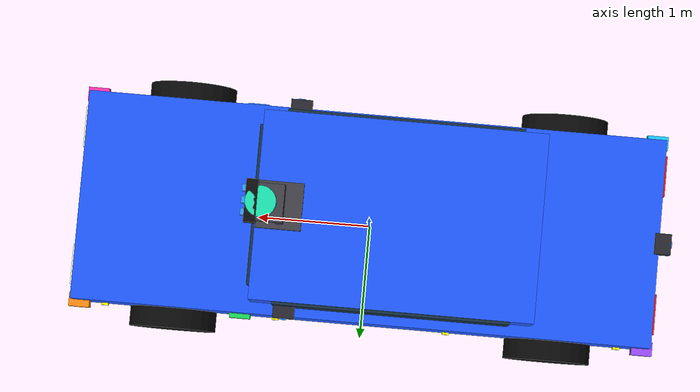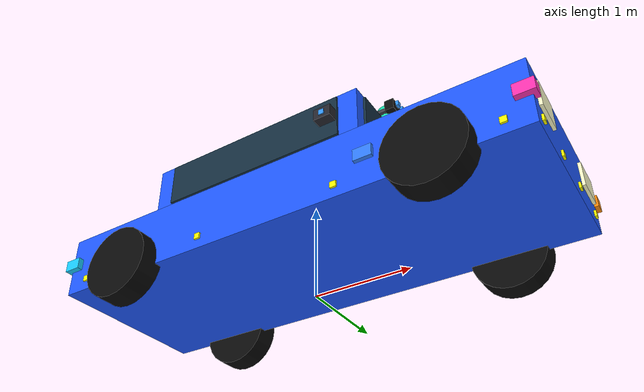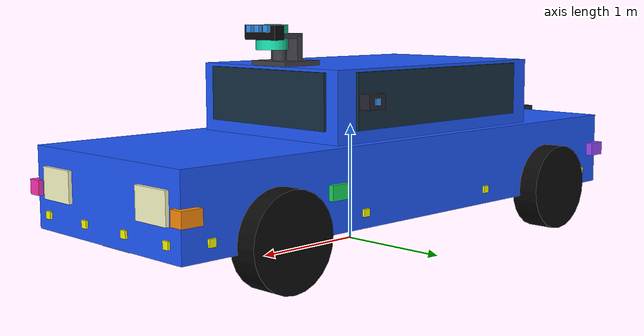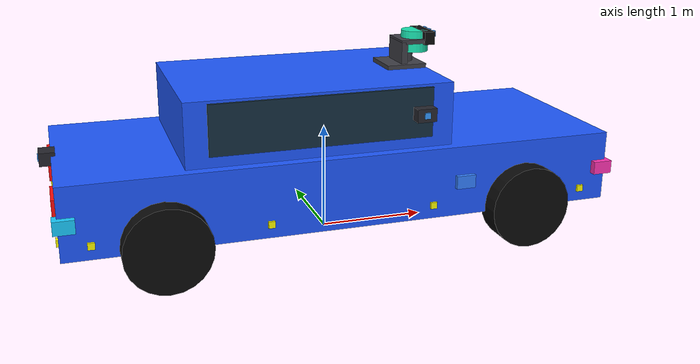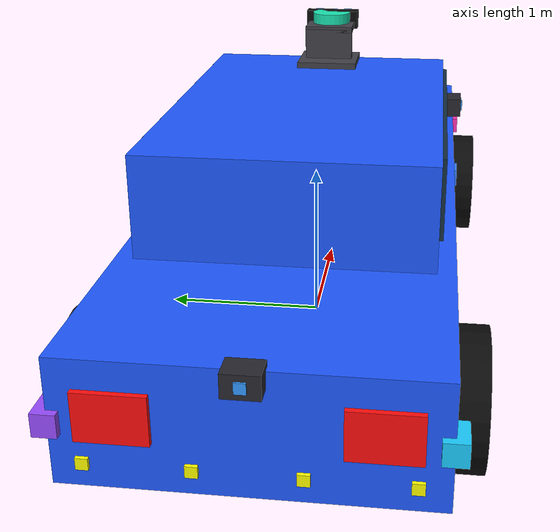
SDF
<?xml version='1.0' encoding='utf-8'?>
<sdf version="1.9">
  <model name="car_b">
    <static>true</static>
    <include merge="true"><uri>model://perception_rig</uri></include>
    <include merge="true"><uri>model://corner_radar_rig</uri></include>
    <include merge="true"><uri>model://side_radar_rig</uri></include>
    <include merge="true"><uri>model://surround_camera_rig</uri></include>
    <include merge="true"><uri>model://ultrasonic_rig</uri></include>
    <link name="body">
      <visual name="chassis">
        <pose>0 0 0.65 0 0 0</pose>
        <geometry>
          <box>
            <size>5 1.8 0.65</size>
          </box>
        </geometry>
        <material>
          <ambient>0.12 0.35 1 1</ambient>
          <diffuse>0.12 0.35 1 1</diffuse>
        </material>
      </visual>
      <visual name="cabin">
        <pose>-0.25 0 1.2 0 0 0</pose>
        <geometry>
          <box>
            <size>2.4 1.6 0.7</size>
          </box>
        </geometry>
        <material>
          <ambient>0.12 0.35 1 1</ambient>
          <diffuse>0.12 0.35 1 1</diffuse>
        </material>
      </visual>
      <visual name="windshield">
        <pose>0.96 0 1.3 0 0 0</pose>
        <geometry>
          <box>
            <size>0.03 1.35 0.45</size>
          </box>
        </geometry>
        <material>
          <ambient>0.08 0.18 0.25 1</ambient>
          <diffuse>0.08 0.18 0.25 1</diffuse>
        </material>
      </visual>
      <visual name="window-1">
        <pose>-0.25 -0.81 1.3 0 0 0</pose>
        <geometry>
          <box>
            <size>2 0.03 0.45</size>
          </box>
        </geometry>
        <material>
          <ambient>0.08 0.18 0.25 1</ambient>
          <diffuse>0.08 0.18 0.25 1</diffuse>
        </material>
      </visual>
      <visual name="wheel-1.65_-1">
        <pose>-1.65 -0.95 0.38 1.570796 0 0</pose>
        <geometry>
          <cylinder>
            <radius>0.38</radius>
            <length>0.25</length>
          </cylinder>
        </geometry>
        <material>
          <ambient>0.04 0.04 0.04 1</ambient>
          <diffuse>0.04 0.04 0.04 1</diffuse>
        </material>
      </visual>
      <visual name="wheel1.65_-1">
        <pose>1.65 -0.95 0.38 1.570796 0 0</pose>
        <geometry>
          <cylinder>
            <radius>0.38</radius>
            <length>0.25</length>
          </cylinder>
        </geometry>
        <material>
          <ambient>0.04 0.04 0.04 1</ambient>
          <diffuse>0.04 0.04 0.04 1</diffuse>
        </material>
      </visual>
      <visual name="headlight-1">
        <pose>2.51 -0.6 0.7 0 0 0</pose>
        <geometry>
          <box>
            <size>0.04 0.35 0.25</size>
          </box>
        </geometry>
        <material>
          <ambient>1 1 0.8 1</ambient>
          <diffuse>1 1 0.8 1</diffuse>
        </material>
      </visual>
      <visual name="taillight-1">
        <pose>-2.51 -0.6 0.7 0 0 0</pose>
        <geometry>
          <box>
            <size>0.04 0.35 0.25</size>
          </box>
        </geometry>
        <material>
          <ambient>1 0.05 0.05 1</ambient>
          <diffuse>1 0.05 0.05 1</diffuse>
        </material>
      </visual>
      <visual name="window1">
        <pose>-0.25 0.81 1.3 0 0 0</pose>
        <geometry>
          <box>
            <size>2 0.03 0.45</size>
          </box>
        </geometry>
        <material>
          <ambient>0.08 0.18 0.25 1</ambient>
          <diffuse>0.08 0.18 0.25 1</diffuse>
        </material>
      </visual>
      <visual name="wheel-1.65_1">
        <pose>-1.65 0.95 0.38 1.570796 0 0</pose>
        <geometry>
          <cylinder>
            <radius>0.38</radius>
            <length>0.25</length>
          </cylinder>
        </geometry>
        <material>
          <ambient>0.04 0.04 0.04 1</ambient>
          <diffuse>0.04 0.04 0.04 1</diffuse>
        </material>
      </visual>
      <visual name="wheel1.65_1">
        <pose>1.65 0.95 0.38 1.570796 0 0</pose>
        <geometry>
          <cylinder>
            <radius>0.38</radius>
            <length>0.25</length>
          </cylinder>
        </geometry>
        <material>
          <ambient>0.04 0.04 0.04 1</ambient>
          <diffuse>0.04 0.04 0.04 1</diffuse>
        </material>
      </visual>
      <visual name="headlight1">
        <pose>2.51 0.6 0.7 0 0 0</pose>
        <geometry>
          <box>
            <size>0.04 0.35 0.25</size>
          </box>
        </geometry>
        <material>
          <ambient>1 1 0.8 1</ambient>
          <diffuse>1 1 0.8 1</diffuse>
        </material>
      </visual>
      <visual name="taillight1">
        <pose>-2.51 0.6 0.7 0 0 0</pose>
        <geometry>
          <box>
            <size>0.04 0.35 0.25</size>
          </box>
        </geometry>
        <material>
          <ambient>1 0.05 0.05 1</ambient>
          <diffuse>1 0.05 0.05 1</diffuse>
        </material>
      </visual>
    </link>
  </model>
</sdf>

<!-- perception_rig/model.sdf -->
<sdf version="1.9">
  <!-- 以车辆中心为原点，x 前、y 左、z 上；话题使用 Gazebo 自动模型作用域。 -->
  <model name="perception_rig">
    <static>true</static>
    <link name="sensor_mount">
      <!-- 车顶 z=1.55；底板、支柱与机身相接，不悬空。 -->
      <visual name="mounting_plate">
        <pose>0.75 0 1.57 0 0 0</pose>
        <geometry><box><size>0.38 0.40 0.04</size></box></geometry>
        <material><ambient>0.25 0.25 0.28 1</ambient><diffuse>0.25 0.25 0.28 1</diffuse></material>
      </visual>
      <visual name="lidar_pedestal">
        <pose>0.82 0 1.64 0 0 0</pose>
        <geometry><cylinder><radius>0.06</radius><length>0.18</length></cylinder></geometry>
        <material><ambient>0.25 0.25 0.28 1</ambient><diffuse>0.25 0.25 0.28 1</diffuse></material>
      </visual>
      <visual name="lidar_housing">
        <pose>0.90 0 1.78 0 0 0</pose>
        <geometry><cylinder><radius>0.13</radius><length>0.2</length></cylinder></geometry>
        <material><ambient>0.1 0.9 0.7 1</ambient><diffuse>0.1 0.9 0.7 1</diffuse></material>
      </visual>
      <visual name="camera_pedestal">
        <pose>0.74 0 1.67 0 0 0</pose>
        <geometry><box><size>0.06 0.32 0.24</size></box></geometry>
        <material><ambient>0.25 0.25 0.28 1</ambient><diffuse>0.25 0.25 0.28 1</diffuse></material>
      </visual>
      <visual name="camera_arm">
        <pose>0.86 0 1.79 0 0 0</pose>
        <geometry><box><size>0.30 0.32 0.04</size></box></geometry>
        <material><ambient>0.25 0.25 0.28 1</ambient><diffuse>0.25 0.25 0.28 1</diffuse></material>
      </visual>
      <visual name="camera_housing">
        <pose>0.98 0 1.82 0 0 0</pose>
        <geometry><box><size>0.1 0.36 0.12</size></box></geometry>
        <material><ambient>0.05 0.05 0.05 1</ambient><diffuse>0.05 0.05 0.05 1</diffuse></material>
      </visual>
      <visual name="wide_lens">
        <pose>1.04 0.10 1.85 0 0 0</pose>
        <geometry><box><size>0.04 0.055 0.055</size></box></geometry>
        <material><ambient>0.2 0.6 1 1</ambient><diffuse>0.2 0.6 1 1</diffuse></material>
      </visual>
      <visual name="standard_lens">
        <pose>1.04 0 1.85 0 0 0</pose>
        <geometry><box><size>0.04 0.055 0.055</size></box></geometry>
        <material><ambient>0.2 0.6 1 1</ambient><diffuse>0.2 0.6 1 1</diffuse></material>
      </visual>
      <visual name="tele_lens">
        <pose>1.04 -0.10 1.85 0 0 0</pose>
        <geometry><box><size>0.04 0.055 0.055</size></box></geometry>
        <material><ambient>0.2 0.6 1 1</ambient><diffuse>0.2 0.6 1 1</diffuse></material>
      </visual>
      <sensor name="lidar" type="gpu_lidar">
        <pose>0.90 0 1.85 0 0 0</pose>
        <always_on>true</always_on><update_rate>10</update_rate>
        <lidar>
          <scan>
            <horizontal><samples>720</samples><resolution>1</resolution><min_angle>-1.0471975512</min_angle><max_angle>1.0471975512</max_angle></horizontal>
            <vertical><samples>64</samples><resolution>1</resolution><min_angle>-0.4363323130</min_angle><max_angle>0.2617993878</max_angle></vertical>
          </scan>
          <range><min>0.3</min><max>100</max><resolution>0.01</resolution></range>
        </lidar>
      </sensor>
      <!-- 车顶前缘 x=0.95、顶面 z=1.55；镜头略向前伸且高于顶面。 -->
      <sensor name="wide" type="camera">
        <pose>1.05 0.10 1.85 0 0.1745329252 0</pose>
        <always_on>true</always_on><update_rate>15</update_rate>
        <camera><horizontal_fov>2.3561944902</horizontal_fov><image><width>640</width><height>360</height><format>R8G8B8</format></image><clip><near>0.05</near><far>150</far></clip></camera>
      </sensor>
      <sensor name="standard" type="camera">
        <pose>1.05 0 1.85 0 0.0872664626 0</pose>
        <always_on>true</always_on><update_rate>15</update_rate>
        <camera><horizontal_fov>1.0471975512</horizontal_fov><image><width>640</width><height>360</height><format>R8G8B8</format></image><clip><near>0.05</near><far>150</far></clip></camera>
      </sensor>
      <sensor name="tele" type="camera">
        <pose>1.05 -0.10 1.85 0 0 0</pose>
        <always_on>true</always_on><update_rate>15</update_rate>
        <camera><horizontal_fov>0.3490658504</horizontal_fov><image><width>640</width><height>360</height><format>R8G8B8</format></image><clip><near>0.05</near><far>300</far></clip></camera>
      </sensor>
    </link>
  </model>
</sdf>

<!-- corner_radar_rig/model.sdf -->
<sdf version="1.9">
  <!-- x forward, y left, z up; sensor poses are relative to the car base. -->
  <model name="corner_radar_rig">
    <static>true</static>
    <link name="radar_front_left_mount">
      <visual name="front_left_housing">
        <pose>2.45 0.9 0.65 0 0 0</pose>
        <geometry><box><size>0.18 0.12 0.12</size></box></geometry>
        <material><ambient>1 0.55 0.05 1</ambient><diffuse>1 0.55 0.05 1</diffuse></material>
      </visual>
      <!-- Range-ray approximation of a corner radar, not an RF model. -->
      <sensor name="front_left" type="gpu_lidar">
        <pose>2.55 0.97 0.65 0 0 0.7853981634</pose>
        <always_on>true</always_on><update_rate>20</update_rate>
        <lidar>
          <scan>
            <horizontal><samples>240</samples><resolution>1</resolution><min_angle>-1.0471975512</min_angle><max_angle>1.0471975512</max_angle></horizontal>
            <vertical><samples>16</samples><resolution>1</resolution><min_angle>-0.2617993878</min_angle><max_angle>0.2617993878</max_angle></vertical>
          </scan>
          <range><min>0.3</min><max>30</max><resolution>0.05</resolution></range>
        </lidar>
      </sensor>
    </link>
    <link name="radar_front_right_mount">
      <visual name="front_right_housing">
        <pose>2.45 -0.9 0.65 0 0 0</pose>
        <geometry><box><size>0.18 0.12 0.12</size></box></geometry>
        <material><ambient>1 0.2 0.7 1</ambient><diffuse>1 0.2 0.7 1</diffuse></material>
      </visual>
      <!-- Range-ray approximation of a corner radar, not an RF model. -->
      <sensor name="front_right" type="gpu_lidar">
        <pose>2.55 -0.97 0.65 0 0 -0.7853981634</pose>
        <always_on>true</always_on><update_rate>20</update_rate>
        <lidar>
          <scan>
            <horizontal><samples>240</samples><resolution>1</resolution><min_angle>-1.0471975512</min_angle><max_angle>1.0471975512</max_angle></horizontal>
            <vertical><samples>16</samples><resolution>1</resolution><min_angle>-0.2617993878</min_angle><max_angle>0.2617993878</max_angle></vertical>
          </scan>
          <range><min>0.3</min><max>30</max><resolution>0.05</resolution></range>
        </lidar>
      </sensor>
    </link>
    <link name="radar_rear_left_mount">
      <visual name="rear_left_housing">
        <pose>-2.45 0.9 0.65 0 0 0</pose>
        <geometry><box><size>0.18 0.12 0.12</size></box></geometry>
        <material><ambient>0.6 0.3 1 1</ambient><diffuse>0.6 0.3 1 1</diffuse></material>
      </visual>
      <!-- Range-ray approximation of a corner radar, not an RF model. -->
      <sensor name="rear_left" type="gpu_lidar">
        <pose>-2.55 0.97 0.65 0 0 2.3561944902</pose>
        <always_on>true</always_on><update_rate>20</update_rate>
        <lidar>
          <scan>
            <horizontal><samples>240</samples><resolution>1</resolution><min_angle>-1.0471975512</min_angle><max_angle>1.0471975512</max_angle></horizontal>
            <vertical><samples>16</samples><resolution>1</resolution><min_angle>-0.2617993878</min_angle><max_angle>0.2617993878</max_angle></vertical>
          </scan>
          <range><min>0.3</min><max>30</max><resolution>0.05</resolution></range>
        </lidar>
      </sensor>
    </link>
    <link name="radar_rear_right_mount">
      <visual name="rear_right_housing">
        <pose>-2.45 -0.9 0.65 0 0 0</pose>
        <geometry><box><size>0.18 0.12 0.12</size></box></geometry>
        <material><ambient>0.1 0.8 1 1</ambient><diffuse>0.1 0.8 1 1</diffuse></material>
      </visual>
      <!-- Range-ray approximation of a corner radar, not an RF model. -->
      <sensor name="rear_right" type="gpu_lidar">
        <pose>-2.55 -0.97 0.65 0 0 -2.3561944902</pose>
        <always_on>true</always_on><update_rate>20</update_rate>
        <lidar>
          <scan>
            <horizontal><samples>240</samples><resolution>1</resolution><min_angle>-1.0471975512</min_angle><max_angle>1.0471975512</max_angle></horizontal>
            <vertical><samples>16</samples><resolution>1</resolution><min_angle>-0.2617993878</min_angle><max_angle>0.2617993878</max_angle></vertical>
          </scan>
          <range><min>0.3</min><max>30</max><resolution>0.05</resolution></range>
        </lidar>
      </sensor>
    </link>
  </model>
</sdf>

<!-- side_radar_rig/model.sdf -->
<sdf version="1.9">
  <model name="side_radar_rig">
    <static>true</static>
    <link name="radar_side_left_mount">
      <visual name="side_left_housing">
        <pose>1.05 0.88 0.65 0 0 0</pose>
        <geometry>
          <box>
            <size>0.18 0.12 0.12</size>
          </box>
        </geometry>
        <material>
          <ambient>0.1 0.85 0.35 1</ambient>
          <diffuse>0.1 0.85 0.35 1</diffuse>
        </material>
      </visual>
      <sensor name="side_left" type="gpu_lidar">
        <pose>1.05 0.97 0.65 0 0 1.9198621772</pose>
        <always_on>true</always_on>
        <update_rate>20</update_rate>
        <lidar>
          <scan>
            <horizontal>
              <samples>240</samples>
              <resolution>1</resolution>
              <min_angle>-1.0471975512</min_angle>
              <max_angle>1.0471975512</max_angle>
            </horizontal>
            <vertical>
              <samples>16</samples>
              <resolution>1</resolution>
              <min_angle>-0.2617993878</min_angle>
              <max_angle>0.2617993878</max_angle>
            </vertical>
          </scan>
          <range>
            <min>0.3</min>
            <max>30</max>
            <resolution>0.05</resolution>
          </range>
        </lidar>
      </sensor>
    </link>
    <link name="radar_side_right_mount">
      <visual name="side_right_housing">
        <pose>1.05 -0.88 0.65 0 0 0</pose>
        <geometry>
          <box>
            <size>0.18 0.12 0.12</size>
          </box>
        </geometry>
        <material>
          <ambient>0.2 0.5 1 1</ambient>
          <diffuse>0.2 0.5 1 1</diffuse>
        </material>
      </visual>
      <sensor name="side_right" type="gpu_lidar">
        <pose>1.05 -0.97 0.65 0 0 -1.9198621772</pose>
        <always_on>true</always_on>
        <update_rate>20</update_rate>
        <lidar>
          <scan>
            <horizontal>
              <samples>240</samples>
              <resolution>1</resolution>
              <min_angle>-1.0471975512</min_angle>
              <max_angle>1.0471975512</max_angle>
            </horizontal>
            <vertical>
              <samples>16</samples>
              <resolution>1</resolution>
              <min_angle>-0.2617993878</min_angle>
              <max_angle>0.2617993878</max_angle>
            </vertical>
          </scan>
          <range>
            <min>0.3</min>
            <max>30</max>
            <resolution>0.05</resolution>
          </range>
        </lidar>
      </sensor>
    </link>
  </model>
</sdf>

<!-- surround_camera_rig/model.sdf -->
<sdf version="1.9">
  <!-- Identity link pose; camera poses relative to vehicle: x forward, y left, z up. -->
  <model name="surround_camera_rig">
    <static>true</static>
    <link name="surround_camera_mount">
      <!-- Side housings touch the windows; optical origins lie outside the housings. -->
      <visual name="left_housing">
        <pose>0.65 0.87 1.30 0 0 0</pose>
        <geometry><box><size>0.18 0.12 0.12</size></box></geometry>
        <material><ambient>0.15 0.15 0.18 1</ambient><diffuse>0.15 0.15 0.18 1</diffuse></material>
      </visual>
      <visual name="left_lens">
        <pose>0.65 0.93 1.30 0 0 0</pose>
        <geometry><box><size>0.055 0.02 0.055</size></box></geometry>
        <material><ambient>0.2 0.6 1 1</ambient><diffuse>0.2 0.6 1 1</diffuse></material>
      </visual>
      <visual name="right_housing">
        <pose>0.65 -0.87 1.30 0 0 0</pose>
        <geometry><box><size>0.18 0.12 0.12</size></box></geometry>
        <material><ambient>0.15 0.15 0.18 1</ambient><diffuse>0.15 0.15 0.18 1</diffuse></material>
      </visual>
      <visual name="right_lens">
        <pose>0.65 -0.93 1.30 0 0 0</pose>
        <geometry><box><size>0.055 0.02 0.055</size></box></geometry>
        <material><ambient>0.2 0.6 1 1</ambient><diffuse>0.2 0.6 1 1</diffuse></material>
      </visual>
      <visual name="rear_housing">
        <pose>-2.53 0 0.95 0 0 0</pose>
        <geometry><box><size>0.14 0.18 0.12</size></box></geometry>
        <material><ambient>0.15 0.15 0.18 1</ambient><diffuse>0.15 0.15 0.18 1</diffuse></material>
      </visual>
      <visual name="rear_lens">
        <pose>-2.60 0 0.95 0 0 0</pose>
        <geometry><box><size>0.02 0.055 0.055</size></box></geometry>
        <material><ambient>0.2 0.6 1 1</ambient><diffuse>0.2 0.6 1 1</diffuse></material>
      </visual>
      <sensor name="left" type="camera">
        <pose>0.65 0.95 1.30 0 0.2617993878 2.0507618711</pose>
        <always_on>true</always_on><update_rate>15</update_rate>
        <camera><horizontal_fov>2.3561944902</horizontal_fov><image><width>640</width><height>360</height><format>R8G8B8</format></image><clip><near>0.05</near><far>150</far></clip></camera>
      </sensor>
      <sensor name="right" type="camera">
        <pose>0.65 -0.95 1.30 0 0.2617993878 -2.0507618711</pose>
        <always_on>true</always_on><update_rate>15</update_rate>
        <camera><horizontal_fov>2.3561944902</horizontal_fov><image><width>640</width><height>360</height><format>R8G8B8</format></image><clip><near>0.05</near><far>150</far></clip></camera>
      </sensor>
      <sensor name="rear" type="camera">
        <pose>-2.62 0 0.95 0 0 3.1415926536</pose>
        <always_on>true</always_on><update_rate>15</update_rate>
        <camera><horizontal_fov>1.7453292520</horizontal_fov><image><width>640</width><height>360</height><format>R8G8B8</format></image><clip><near>0.05</near><far>150</far></clip></camera>
      </sensor>
    </link>
  </model>
</sdf>

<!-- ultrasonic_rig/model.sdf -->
<sdf version="1.9">
  <model name="ultrasonic_rig">
    <static>true</static>
    <link name="ultrasonic_front_left_outer_mount">
      <visual name="front_left_outer_housing">
        <pose>2.5 0.75 0.45 0 0 0</pose>
        <geometry>
          <box>
            <size>0.04 0.06 0.06</size>
          </box>
        </geometry>
        <material>
          <ambient>1 1 0 1</ambient>
          <diffuse>1 1 0 1</diffuse>
        </material>
      </visual>
      <sensor name="front_left_outer" type="gpu_lidar">
        <pose>2.54 0.75 0.45 0 0 0.6981317008</pose>
        <always_on>true</always_on>
        <update_rate>10</update_rate>
        <lidar>
          <scan>
            <horizontal>
              <samples>80</samples>
              <resolution>1</resolution>
              <min_angle>-0.8726646260</min_angle>
              <max_angle>0.8726646260</max_angle>
            </horizontal>
            <vertical>
              <samples>16</samples>
              <resolution>1</resolution>
              <min_angle>-0.5235987756</min_angle>
              <max_angle>0.5235987756</max_angle>
            </vertical>
          </scan>
          <range>
            <min>0.15</min>
            <max>5</max>
            <resolution>0.01</resolution>
          </range>
        </lidar>
      </sensor>
    </link>
    <link name="ultrasonic_front_left_inner_mount">
      <visual name="front_left_inner_housing">
        <pose>2.5 0.25 0.45 0 0 0</pose>
        <geometry>
          <box>
            <size>0.04 0.06 0.06</size>
          </box>
        </geometry>
        <material>
          <ambient>1 1 0 1</ambient>
          <diffuse>1 1 0 1</diffuse>
        </material>
      </visual>
      <sensor name="front_left_inner" type="gpu_lidar">
        <pose>2.54 0.25 0.45 0 0 0.1745329252</pose>
        <always_on>true</always_on>
        <update_rate>10</update_rate>
        <lidar>
          <scan>
            <horizontal>
              <samples>80</samples>
              <resolution>1</resolution>
              <min_angle>-0.8726646260</min_angle>
              <max_angle>0.8726646260</max_angle>
            </horizontal>
            <vertical>
              <samples>16</samples>
              <resolution>1</resolution>
              <min_angle>-0.5235987756</min_angle>
              <max_angle>0.5235987756</max_angle>
            </vertical>
          </scan>
          <range>
            <min>0.15</min>
            <max>5</max>
            <resolution>0.01</resolution>
          </range>
        </lidar>
      </sensor>
    </link>
    <link name="ultrasonic_front_right_inner_mount">
      <visual name="front_right_inner_housing">
        <pose>2.5 -0.25 0.45 0 0 0</pose>
        <geometry>
          <box>
            <size>0.04 0.06 0.06</size>
          </box>
        </geometry>
        <material>
          <ambient>1 1 0 1</ambient>
          <diffuse>1 1 0 1</diffuse>
        </material>
      </visual>
      <sensor name="front_right_inner" type="gpu_lidar">
        <pose>2.54 -0.25 0.45 0 0 -0.1745329252</pose>
        <always_on>true</always_on>
        <update_rate>10</update_rate>
        <lidar>
          <scan>
            <horizontal>
              <samples>80</samples>
              <resolution>1</resolution>
              <min_angle>-0.8726646260</min_angle>
              <max_angle>0.8726646260</max_angle>
            </horizontal>
            <vertical>
              <samples>16</samples>
              <resolution>1</resolution>
              <min_angle>-0.5235987756</min_angle>
              <max_angle>0.5235987756</max_angle>
            </vertical>
          </scan>
          <range>
            <min>0.15</min>
            <max>5</max>
            <resolution>0.01</resolution>
          </range>
        </lidar>
      </sensor>
    </link>
    <link name="ultrasonic_front_right_outer_mount">
      <visual name="front_right_outer_housing">
        <pose>2.5 -0.75 0.45 0 0 0</pose>
        <geometry>
          <box>
            <size>0.04 0.06 0.06</size>
          </box>
        </geometry>
        <material>
          <ambient>1 1 0 1</ambient>
          <diffuse>1 1 0 1</diffuse>
        </material>
      </visual>
      <sensor name="front_right_outer" type="gpu_lidar">
        <pose>2.54 -0.75 0.45 0 0 -0.6981317008</pose>
        <always_on>true</always_on>
        <update_rate>10</update_rate>
        <lidar>
          <scan>
            <horizontal>
              <samples>80</samples>
              <resolution>1</resolution>
              <min_angle>-0.8726646260</min_angle>
              <max_angle>0.8726646260</max_angle>
            </horizontal>
            <vertical>
              <samples>16</samples>
              <resolution>1</resolution>
              <min_angle>-0.5235987756</min_angle>
              <max_angle>0.5235987756</max_angle>
            </vertical>
          </scan>
          <range>
            <min>0.15</min>
            <max>5</max>
            <resolution>0.01</resolution>
          </range>
        </lidar>
      </sensor>
    </link>
    <link name="ultrasonic_rear_left_outer_mount">
      <visual name="rear_left_outer_housing">
        <pose>-2.5 0.75 0.45 0 0 0</pose>
        <geometry>
          <box>
            <size>0.04 0.06 0.06</size>
          </box>
        </geometry>
        <material>
          <ambient>1 1 0 1</ambient>
          <diffuse>1 1 0 1</diffuse>
        </material>
      </visual>
      <sensor name="rear_left_outer" type="gpu_lidar">
        <pose>-2.54 0.75 0.45 0 0 2.4434609528</pose>
        <always_on>true</always_on>
        <update_rate>10</update_rate>
        <lidar>
          <scan>
            <horizontal>
              <samples>80</samples>
              <resolution>1</resolution>
              <min_angle>-0.8726646260</min_angle>
              <max_angle>0.8726646260</max_angle>
            </horizontal>
            <vertical>
              <samples>16</samples>
              <resolution>1</resolution>
              <min_angle>-0.5235987756</min_angle>
              <max_angle>0.5235987756</max_angle>
            </vertical>
          </scan>
          <range>
            <min>0.15</min>
            <max>5</max>
            <resolution>0.01</resolution>
          </range>
        </lidar>
      </sensor>
    </link>
    <link name="ultrasonic_rear_left_inner_mount">
      <visual name="rear_left_inner_housing">
        <pose>-2.5 0.25 0.45 0 0 0</pose>
        <geometry>
          <box>
            <size>0.04 0.06 0.06</size>
          </box>
        </geometry>
        <material>
          <ambient>1 1 0 1</ambient>
          <diffuse>1 1 0 1</diffuse>
        </material>
      </visual>
      <sensor name="rear_left_inner" type="gpu_lidar">
        <pose>-2.54 0.25 0.45 0 0 2.9670597284</pose>
        <always_on>true</always_on>
        <update_rate>10</update_rate>
        <lidar>
          <scan>
            <horizontal>
              <samples>80</samples>
              <resolution>1</resolution>
              <min_angle>-0.8726646260</min_angle>
              <max_angle>0.8726646260</max_angle>
            </horizontal>
            <vertical>
              <samples>16</samples>
              <resolution>1</resolution>
              <min_angle>-0.5235987756</min_angle>
              <max_angle>0.5235987756</max_angle>
            </vertical>
          </scan>
          <range>
            <min>0.15</min>
            <max>5</max>
            <resolution>0.01</resolution>
          </range>
        </lidar>
      </sensor>
    </link>
    <link name="ultrasonic_rear_right_inner_mount">
      <visual name="rear_right_inner_housing">
        <pose>-2.5 -0.25 0.45 0 0 0</pose>
        <geometry>
          <box>
            <size>0.04 0.06 0.06</size>
          </box>
        </geometry>
        <material>
          <ambient>1 1 0 1</ambient>
          <diffuse>1 1 0 1</diffuse>
        </material>
      </visual>
      <sensor name="rear_right_inner" type="gpu_lidar">
        <pose>-2.54 -0.25 0.45 0 0 3.3161255788</pose>
        <always_on>true</always_on>
        <update_rate>10</update_rate>
        <lidar>
          <scan>
            <horizontal>
              <samples>80</samples>
              <resolution>1</resolution>
              <min_angle>-0.8726646260</min_angle>
              <max_angle>0.8726646260</max_angle>
            </horizontal>
            <vertical>
              <samples>16</samples>
              <resolution>1</resolution>
              <min_angle>-0.5235987756</min_angle>
              <max_angle>0.5235987756</max_angle>
            </vertical>
          </scan>
          <range>
            <min>0.15</min>
            <max>5</max>
            <resolution>0.01</resolution>
          </range>
        </lidar>
      </sensor>
    </link>
    <link name="ultrasonic_rear_right_outer_mount">
      <visual name="rear_right_outer_housing">
        <pose>-2.5 -0.75 0.45 0 0 0</pose>
        <geometry>
          <box>
            <size>0.04 0.06 0.06</size>
          </box>
        </geometry>
        <material>
          <ambient>1 1 0 1</ambient>
          <diffuse>1 1 0 1</diffuse>
        </material>
      </visual>
      <sensor name="rear_right_outer" type="gpu_lidar">
        <pose>-2.54 -0.75 0.45 0 0 3.8397243544</pose>
        <always_on>true</always_on>
        <update_rate>10</update_rate>
        <lidar>
          <scan>
            <horizontal>
              <samples>80</samples>
              <resolution>1</resolution>
              <min_angle>-0.8726646260</min_angle>
              <max_angle>0.8726646260</max_angle>
            </horizontal>
            <vertical>
              <samples>16</samples>
              <resolution>1</resolution>
              <min_angle>-0.5235987756</min_angle>
              <max_angle>0.5235987756</max_angle>
            </vertical>
          </scan>
          <range>
            <min>0.15</min>
            <max>5</max>
            <resolution>0.01</resolution>
          </range>
        </lidar>
      </sensor>
    </link>
    <link name="ultrasonic_side_left_front_mount">
      <visual name="side_left_front_housing">
        <pose>2.25 0.9 0.45 0 0 0</pose>
        <geometry>
          <box>
            <size>0.06 0.04 0.06</size>
          </box>
        </geometry>
        <material>
          <ambient>1 1 0 1</ambient>
          <diffuse>1 1 0 1</diffuse>
        </material>
      </visual>
      <sensor name="side_left_front" type="gpu_lidar">
        <pose>2.25 0.94 0.45 0 0 1.3089969390</pose>
        <always_on>true</always_on>
        <update_rate>10</update_rate>
        <lidar>
          <scan>
            <horizontal>
              <samples>80</samples>
              <resolution>1</resolution>
              <min_angle>-0.8726646260</min_angle>
              <max_angle>0.8726646260</max_angle>
            </horizontal>
            <vertical>
              <samples>16</samples>
              <resolution>1</resolution>
              <min_angle>-0.5235987756</min_angle>
              <max_angle>0.5235987756</max_angle>
            </vertical>
          </scan>
          <range>
            <min>0.15</min>
            <max>5</max>
            <resolution>0.01</resolution>
          </range>
        </lidar>
      </sensor>
    </link>
    <link name="ultrasonic_side_left_mid_front_mount">
      <visual name="side_left_mid_front_housing">
        <pose>0.75 0.9 0.45 0 0 0</pose>
        <geometry>
          <box>
            <size>0.06 0.04 0.06</size>
          </box>
        </geometry>
        <material>
          <ambient>1 1 0 1</ambient>
          <diffuse>1 1 0 1</diffuse>
        </material>
      </visual>
      <sensor name="side_left_mid_front" type="gpu_lidar">
        <pose>0.75 0.94 0.45 0 0 1.5707963268</pose>
        <always_on>true</always_on>
        <update_rate>10</update_rate>
        <lidar>
          <scan>
            <horizontal>
              <samples>80</samples>
              <resolution>1</resolution>
              <min_angle>-0.8726646260</min_angle>
              <max_angle>0.8726646260</max_angle>
            </horizontal>
            <vertical>
              <samples>16</samples>
              <resolution>1</resolution>
              <min_angle>-0.5235987756</min_angle>
              <max_angle>0.5235987756</max_angle>
            </vertical>
          </scan>
          <range>
            <min>0.15</min>
            <max>5</max>
            <resolution>0.01</resolution>
          </range>
        </lidar>
      </sensor>
    </link>
    <link name="ultrasonic_side_left_mid_rear_mount">
      <visual name="side_left_mid_rear_housing">
        <pose>-0.75 0.9 0.45 0 0 0</pose>
        <geometry>
          <box>
            <size>0.06 0.04 0.06</size>
          </box>
        </geometry>
        <material>
          <ambient>1 1 0 1</ambient>
          <diffuse>1 1 0 1</diffuse>
        </material>
      </visual>
      <sensor name="side_left_mid_rear" type="gpu_lidar">
        <pose>-0.75 0.94 0.45 0 0 1.5707963268</pose>
        <always_on>true</always_on>
        <update_rate>10</update_rate>
        <lidar>
          <scan>
            <horizontal>
              <samples>80</samples>
              <resolution>1</resolution>
              <min_angle>-0.8726646260</min_angle>
              <max_angle>0.8726646260</max_angle>
            </horizontal>
            <vertical>
              <samples>16</samples>
              <resolution>1</resolution>
              <min_angle>-0.5235987756</min_angle>
              <max_angle>0.5235987756</max_angle>
            </vertical>
          </scan>
          <range>
            <min>0.15</min>
            <max>5</max>
            <resolution>0.01</resolution>
          </range>
        </lidar>
      </sensor>
    </link>
    <link name="ultrasonic_side_left_rear_mount">
      <visual name="side_left_rear_housing">
        <pose>-2.25 0.9 0.45 0 0 0</pose>
        <geometry>
          <box>
            <size>0.06 0.04 0.06</size>
          </box>
        </geometry>
        <material>
          <ambient>1 1 0 1</ambient>
          <diffuse>1 1 0 1</diffuse>
        </material>
      </visual>
      <sensor name="side_left_rear" type="gpu_lidar">
        <pose>-2.25 0.94 0.45 0 0 1.8325957146</pose>
        <always_on>true</always_on>
        <update_rate>10</update_rate>
        <lidar>
          <scan>
            <horizontal>
              <samples>80</samples>
              <resolution>1</resolution>
              <min_angle>-0.8726646260</min_angle>
              <max_angle>0.8726646260</max_angle>
            </horizontal>
            <vertical>
              <samples>16</samples>
              <resolution>1</resolution>
              <min_angle>-0.5235987756</min_angle>
              <max_angle>0.5235987756</max_angle>
            </vertical>
          </scan>
          <range>
            <min>0.15</min>
            <max>5</max>
            <resolution>0.01</resolution>
          </range>
        </lidar>
      </sensor>
    </link>
    <link name="ultrasonic_side_right_front_mount">
      <visual name="side_right_front_housing">
        <pose>2.25 -0.9 0.45 0 0 0</pose>
        <geometry>
          <box>
            <size>0.06 0.04 0.06</size>
          </box>
        </geometry>
        <material>
          <ambient>1 1 0 1</ambient>
          <diffuse>1 1 0 1</diffuse>
        </material>
      </visual>
      <sensor name="side_right_front" type="gpu_lidar">
        <pose>2.25 -0.94 0.45 0 0 -1.3089969390</pose>
        <always_on>true</always_on>
        <update_rate>10</update_rate>
        <lidar>
          <scan>
            <horizontal>
              <samples>80</samples>
              <resolution>1</resolution>
              <min_angle>-0.8726646260</min_angle>
              <max_angle>0.8726646260</max_angle>
            </horizontal>
            <vertical>
              <samples>16</samples>
              <resolution>1</resolution>
              <min_angle>-0.5235987756</min_angle>
              <max_angle>0.5235987756</max_angle>
            </vertical>
          </scan>
          <range>
            <min>0.15</min>
            <max>5</max>
            <resolution>0.01</resolution>
          </range>
        </lidar>
      </sensor>
    </link>
    <link name="ultrasonic_side_right_mid_front_mount">
      <visual name="side_right_mid_front_housing">
        <pose>0.75 -0.9 0.45 0 0 0</pose>
        <geometry>
          <box>
            <size>0.06 0.04 0.06</size>
          </box>
        </geometry>
        <material>
          <ambient>1 1 0 1</ambient>
          <diffuse>1 1 0 1</diffuse>
        </material>
      </visual>
      <sensor name="side_right_mid_front" type="gpu_lidar">
        <pose>0.75 -0.94 0.45 0 0 -1.5707963268</pose>
        <always_on>true</always_on>
        <update_rate>10</update_rate>
        <lidar>
          <scan>
            <horizontal>
              <samples>80</samples>
              <resolution>1</resolution>
              <min_angle>-0.8726646260</min_angle>
              <max_angle>0.8726646260</max_angle>
            </horizontal>
            <vertical>
              <samples>16</samples>
              <resolution>1</resolution>
              <min_angle>-0.5235987756</min_angle>
              <max_angle>0.5235987756</max_angle>
            </vertical>
          </scan>
          <range>
            <min>0.15</min>
            <max>5</max>
            <resolution>0.01</resolution>
          </range>
        </lidar>
      </sensor>
    </link>
    <link name="ultrasonic_side_right_mid_rear_mount">
      <visual name="side_right_mid_rear_housing">
        <pose>-0.75 -0.9 0.45 0 0 0</pose>
        <geometry>
          <box>
            <size>0.06 0.04 0.06</size>
          </box>
        </geometry>
        <material>
          <ambient>1 1 0 1</ambient>
          <diffuse>1 1 0 1</diffuse>
        </material>
      </visual>
      <sensor name="side_right_mid_rear" type="gpu_lidar">
        <pose>-0.75 -0.94 0.45 0 0 -1.5707963268</pose>
        <always_on>true</always_on>
        <update_rate>10</update_rate>
        <lidar>
          <scan>
            <horizontal>
              <samples>80</samples>
              <resolution>1</resolution>
              <min_angle>-0.8726646260</min_angle>
              <max_angle>0.8726646260</max_angle>
            </horizontal>
            <vertical>
              <samples>16</samples>
              <resolution>1</resolution>
              <min_angle>-0.5235987756</min_angle>
              <max_angle>0.5235987756</max_angle>
            </vertical>
          </scan>
          <range>
            <min>0.15</min>
            <max>5</max>
            <resolution>0.01</resolution>
          </range>
        </lidar>
      </sensor>
    </link>
    <link name="ultrasonic_side_right_rear_mount">
      <visual name="side_right_rear_housing">
        <pose>-2.25 -0.9 0.45 0 0 0</pose>
        <geometry>
          <box>
            <size>0.06 0.04 0.06</size>
          </box>
        </geometry>
        <material>
          <ambient>1 1 0 1</ambient>
          <diffuse>1 1 0 1</diffuse>
        </material>
      </visual>
      <sensor name="side_right_rear" type="gpu_lidar">
        <pose>-2.25 -0.94 0.45 0 0 -1.8325957146</pose>
        <always_on>true</always_on>
        <update_rate>10</update_rate>
        <lidar>
          <scan>
            <horizontal>
              <samples>80</samples>
              <resolution>1</resolution>
              <min_angle>-0.8726646260</min_angle>
              <max_angle>0.8726646260</max_angle>
            </horizontal>
            <vertical>
              <samples>16</samples>
              <resolution>1</resolution>
              <min_angle>-0.5235987756</min_angle>
              <max_angle>0.5235987756</max_angle>
            </vertical>
          </scan>
          <range>
            <min>0.15</min>
            <max>5</max>
            <resolution>0.01</resolution>
          </range>
        </lidar>
      </sensor>
    </link>
  </model>
</sdf>
